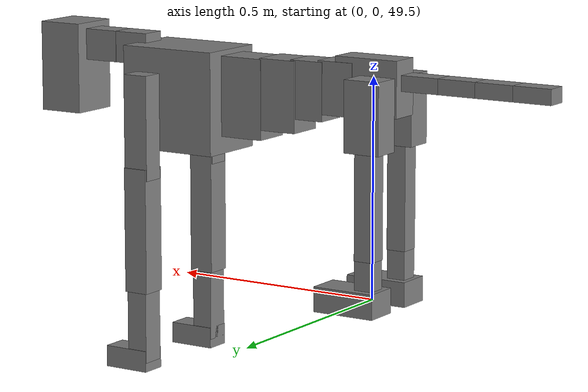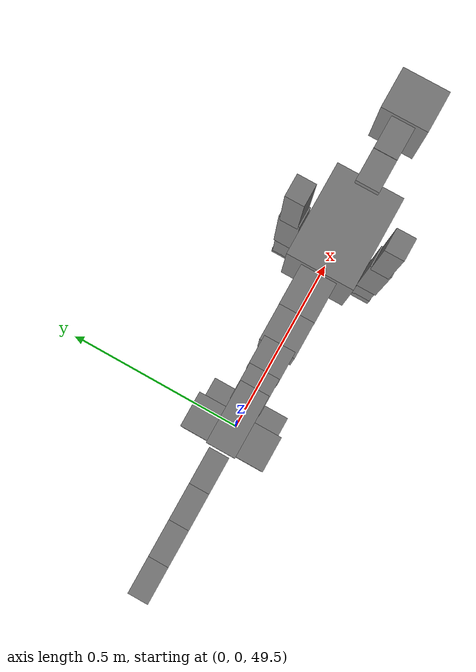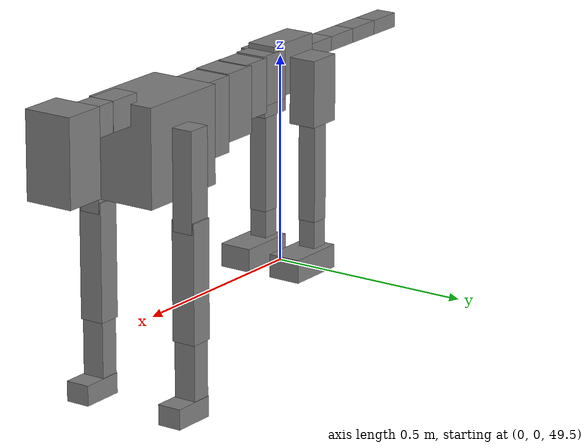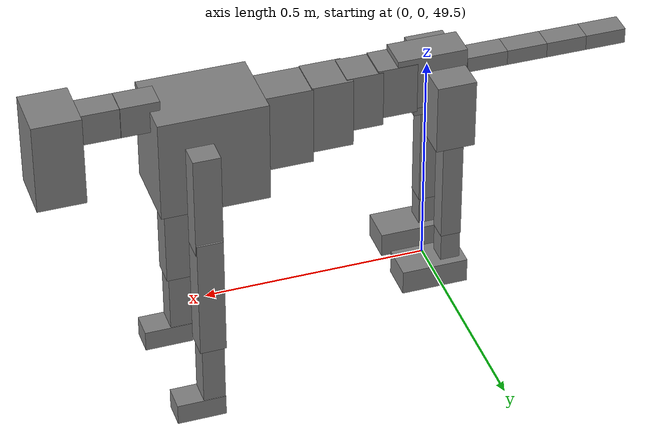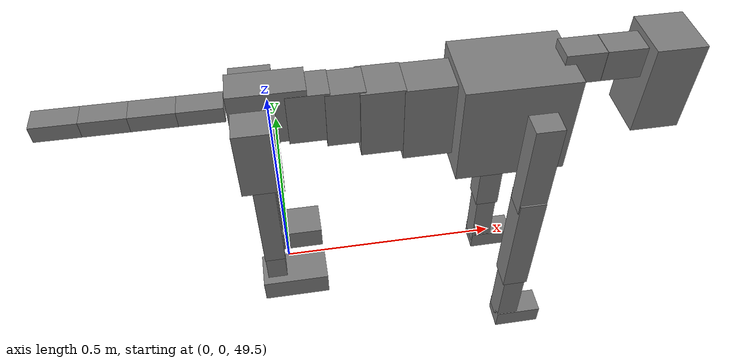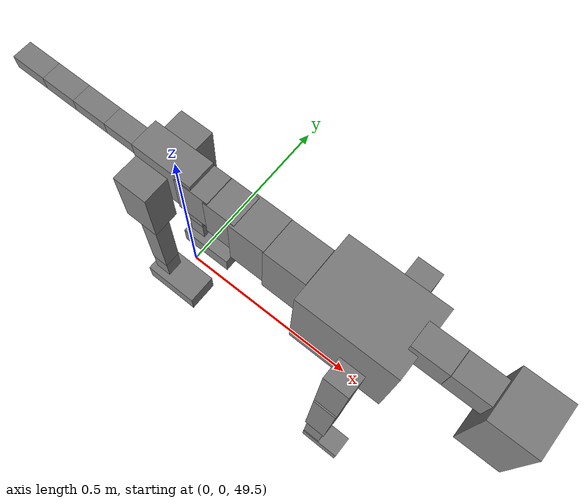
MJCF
<mujoco model="dog">

    <default>
        <joint armature="0.02" stiffness="1" damping="0.2" limited="true"/>
        <geom condim="3" friction="1 0.05 0.05" margin="0.01"/>
        <motor ctrllimited="true" ctrlrange="-1.0 1.0" forcelimited="true" gear="50"/>
    </default>

    <compiler inertiafromgeom="true" angle="radian"/>

    <option timestep="0.016" iterations="50" tolerance="1e-10" solver="Newton" jacobian="dense" cone="pyramidal"/>

    <size nconmax="20000" njmax="60000" nstack="5000000"/>
    <visual>
        <map force="0.1" zfar="30"/>
        <rgba haze="0.15 0.25 0.35 1"/>
        <quality shadowsize="2048"/>
        <global offwidth="800" offheight="800"/>
    </visual>

    <asset>
        <texture type="skybox" builtin="gradient" rgb1="0.3 0.5 0.7" rgb2="0 0 0" width="512" height="512"/>
        <texture name="texplane" type="2d" builtin="checker" rgb1=".2 .3 .4" rgb2=".1 0.15 0.2" width="512" height="512"
                 mark="cross" markrgb=".8 .8 .8"/>
        <texture name="texgeom" type="cube" builtin="flat" mark="cross" width="127" height="1278" rgb1="0.8 0.6 0.4"
                 rgb2="0.8 0.6 0.4" markrgb="1 1 1" random="0.01"/>

        <material name="matplane" reflectance="0.3" texture="texplane" texrepeat="1 1" texuniform="true"/>
        <material name="matgeom" texture="texgeom" texuniform="true" rgba="0.8 0.6 .4 1"/>
    </asset>

    <worldbody>
        <geom name="floor" pos="0 0 0" size="0 0 .25" type="plane" material="matplane" condim="3"/>

        <light directional="false" diffuse=".2 .2 .2" specular="0 0 0" pos="0 0 5" dir="0 0 -1" castshadow="false"/>
        <light mode="targetbodycom" target="torso" directional="false" diffuse=".8 .8 .8" specular="0.3 0.3 0.3"
               pos="0 0 4.0" dir="0 0 -1"/>

        <body name="root" pos="0 0 50">
            <freejoint name="root_1"/>
            <geom type="box" pos="0 0 -0.02" size="0.0774  0.0358  0.063" density="2030"/>

            <body name="spine1" pos="0.054 0 0">
                <joint name="spine1_y" axis="0 1 0" range="0 0.7" limited="true"/>
                <geom type="box" pos="0.02375 0 -0.03" size="0.04375  0.0375  0.05985" density="2030"/>

                <body name="spine2" pos="0.0612 0 0">
                    <joint name="spine2_y" axis="0 1 0" range="-0.15 0.15" limited="true"/>
                    <geom type="box" pos="0.03555  0  -0.04" size="0.04055  0.039  0.06615" density="2030"/>

                    <body name="spine3" pos="0.0730 0 0">
                        <joint name="spine3_y" axis="0 1 0" range="-0.15 0.15" limited="true"/>
                        <geom type="box" pos="0.03555  0  -0.057" size="0.04555  0.0445  0.081" density="2030"/>

                        <body name="spine4" pos="0.0780 0 0">
                            <joint name="spine4_y" axis="0 1 0" range="-0.15 0.15" limited="true"/>
                            <geom type="box" pos="0.05265  0  -0.07" size="0.05265  0.045  0.09135" density="2030"/>

                            <body name="torso" pos="0.1082 0 0">
                                <joint name="torso_y" axis="0 1 0" range="-0.15 0.15" limited="true"/>
                                <geom type="box" pos="0.11925  0  -0.085" size="0.11925  0.085  0.11745"
                                      density="2030"/>

                                <body name="neck1" pos="0.2160  0   0.0180">
                                    <joint name="neck1_y" axis="0 1 0" range="-1.2  -1" limited="true"/>
                                    <geom type="box" pos="0.0423  0  0" size="0.0423  0.03  0.036" density="2325"/>

                                    <body name="neck2" pos="0.0853  0  0">
                                        <joint name="neck2_y" axis="0 1 0" range="0.1  0" limited="true"/>
                                        <geom type="box" pos="0.0423  0  0" size="0.0423  0.03  0.036" density="2325"/>

                                        <body name="head" pos="0.0853  0  0">
                                            <joint name="head_y" axis="0 1 0" range="-0.3  -0.2" limited="true"/>
                                            <geom type="box" pos="0.0531  0  -0.055" size="0.0531  0.06  0.1044"
                                                  density="4030"/>

                                        </body>
                                    </body>
                                </body>

                                <body name="front_shoulder" pos="0.156  0   -0.0480">
                                    <joint name="front_shoulder_y" axis="0 1 0" range="-1 1.5" limited="true"/>
                                    <geom type="box" pos="0 0.13 -0.0932" size="0.0302  0.0258  0.1198" density="1158"/>
                                    <geom type="box" pos="0 -0.13 -0.0932" size="0.0302  0.0258  0.1198"
                                          density="1158"/>

                                    <body name="front_elbow" pos="0  0  -0.1864">
                                        <joint name="front_elbow_y" axis="0 1 0" range="-2 0" limited="true"/>
                                        <geom type="box" pos="0 0.13 -0.1431" size="0.0291  0.0298  0.1431"
                                              density="1081"/>
                                        <geom type="box" pos="0 -0.13 -0.1431" size="0.0291  0.0298  0.1431"
                                              density="1081"/>

                                        <body name="front_wrist" pos="0  0  -0.2862">
                                            <joint name="front_wrist_y" axis="0 1 0" range="-0.2 0" limited="true"/>
                                            <geom type="box" pos="0 0.13 -0.0746" size="0.0248  0.0276  0.0878"
                                                  density="1664"/>
                                            <geom type="box" pos="0 -0.13 -0.0746" size="0.0248  0.0276  0.0878"
                                                  density="1664"/>

                                            <body name="front_finger_end" pos="0  0  -0.1492">
                                                <joint name="front_finger_y" axis="0 1 0" range="-0.4 1"
                                                       limited="true"/>
                                                <geom type="box" pos="0.0298  0.13  -0.0095"
                                                      size="0.0546  0.0298  0.0245" density="1515"/>
                                                <geom type="box" pos="0.0298  -0.13  -0.0095"
                                                      size="0.0546  0.0298  0.0245" density="1515"/>

                                            </body>

                                        </body>
                                    </body>
                                </body>

                            </body>
                        </body>
                    </body>
                </body>
            </body>

            <body name="back_hip" pos="-0.03 0 -0.018">
                <joint name="back_hip_y" axis="0 1 0" range="-1.5 0.3" limited="true"/>
                <geom type="box" pos="0 0.07 -0.0575" size="0.0432  0.0339  0.0803" density="1154"/>
                <geom type="box" pos="0 -0.07 -0.0575" size="0.0432  0.0339  0.0803" density="1154"/>

                <body name="back_knee" pos="0  0  -0.1150">
                    <joint name="back_knee_y" axis="0 1 0" range="0 2.8" limited="true"/>
                    <geom type="box" pos="0 0.07 -0.1225" size="0.0227  0.0224  0.1381" density="1227"/>
                    <geom type="box" pos="0 -0.07 -0.1225" size="0.0227  0.0224  0.1381" density="1227"/>

                    <body name="back_ankle" pos="0  0  -0.2451">
                        <joint name="back_ankle_y" axis="0 1 0" range="-2.2 0" limited="true"/>
                        <geom type="box" pos="0 0.07 -0.0478" size="0.0218  0.0218  0.0590" density="1284"/>
                        <geom type="box" pos="0 -0.07 -0.0478" size="0.0218  0.0218  0.0590" density="1284"/>

                        <body name="back_toe_end" pos="0  0  -0.0955">
                            <joint name="back_toe_y" axis="0 1 0" range="-0.4 1" limited="true"/>
                            <geom type="box" pos="0.0405  0.07  -0.0133" size="0.0743  0.0405  0.0283" density="1515"/>
                            <geom type="box" pos="0.0405  -0.07  -0.0133" size="0.0743  0.0405  0.0283" density="1515"/>

                        </body>
                    </body>
                </body>
            </body>

            <body name="tail1" pos="-0.074 0 -0.006">
                <joint name="tail1_y" axis="0 1 0" range="-0.2 0.2" limited="true"/>
                <geom type="box" pos="-0.0536  0  0" size="0.045  0.025  0.0175" density="1587"/>

                <body name="tail2" pos="-0.09 0 0">
                    <joint name="tail2_y" axis="0 1 0" range="-0.2 0.2" limited="true"/>
                    <geom type="box" pos="-0.0536  0  0" size="0.045  0.025  0.0175" density="1587"/>

                    <body name="tail3" pos="-0.09 0 0">
                        <joint name="tail3_y" axis="0 1 0" range="-0.2 0.2" limited="true"/>
                        <geom type="box" pos="-0.0536  0  0" size="0.045  0.025  0.0175" density="1587"/>

                        <body name="tail4" pos="-0.09 0 0">
                            <joint name="tail4_y" axis="0 1 0" range="-0.2 0.2" limited="true"/>
                            <geom type="box" pos="-0.0536  0  0" size="0.045  0.025  0.0175" density="1587"/>

                        </body>
                    </body>
                </body>
            </body>
        </body>
    </worldbody>

    <actuator>
        <motor joint="spine1_y" forcerange="-150 150     "/>
        <motor joint="spine2_y" forcerange="-150 150     "/>
        <motor joint="spine3_y" forcerange="-150 150     "/>
        <motor joint="spine4_y" forcerange="-150 150     "/>
        <motor joint="torso_y" forcerange="-150 150     "/>
        <motor joint="neck1_y" forcerange="-100 100       "/>
        <motor joint="neck2_y" forcerange="-100 100       "/>
        <motor joint="head_y" forcerange="-150 150       "/>
        <motor joint="front_shoulder_y" forcerange="-106.25 165.72"/>
        <motor joint="front_elbow_y" forcerange="-130.40 186.32"/>
        <motor joint="front_wrist_y" forcerange="-126.56 93.98"/>
        <motor joint="front_finger_y" forcerange="-37.17 81.71"/>
        <motor joint="back_hip_y" forcerange="-319.64 332.33"/>
        <motor joint="back_knee_y" forcerange="-257.13 268.48"/>
        <motor joint="back_angle_y" forcerange="-169.86 79.37"/>
        <motor joint="back_toe_y" forcerange="-109.28 134.89"/>
        <motor joint="tail1_y" forcerange="-50 50     "/>
        <motor joint="tail2_y" forcerange="-50 50     "/>
        <motor joint="tail3_y" forcerange="-50 50     "/>
        <motor joint="tail4_y" forcerange="-50 50     "/>
    </actuator>
</mujoco>
